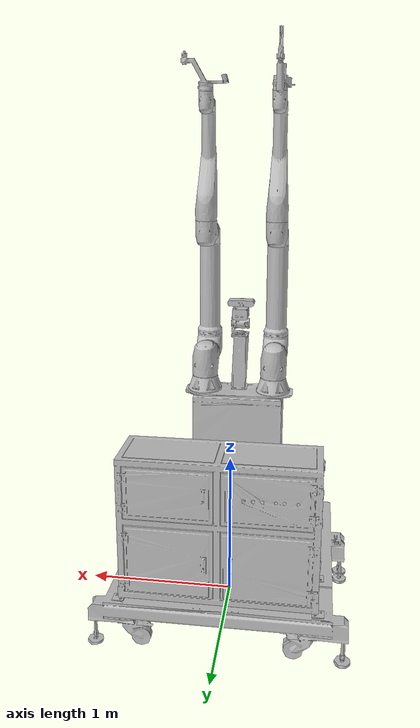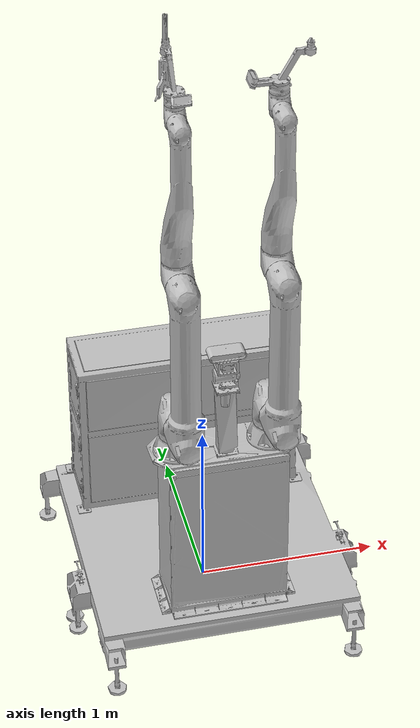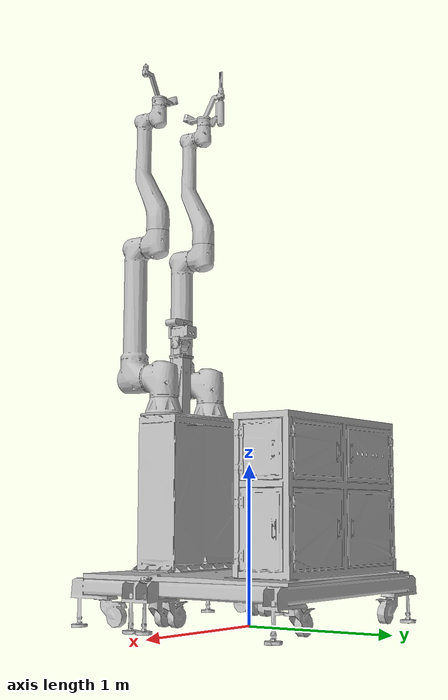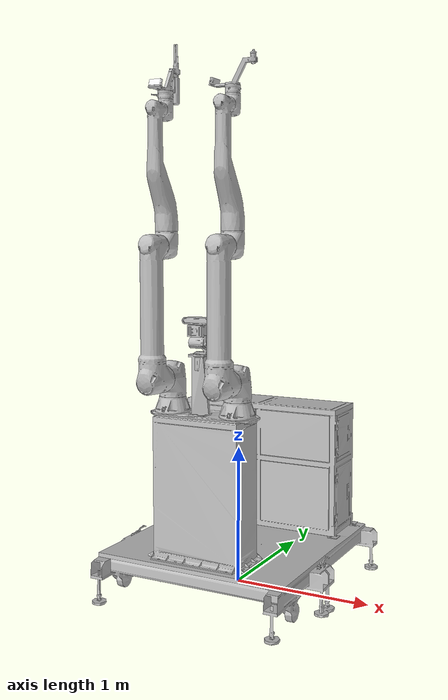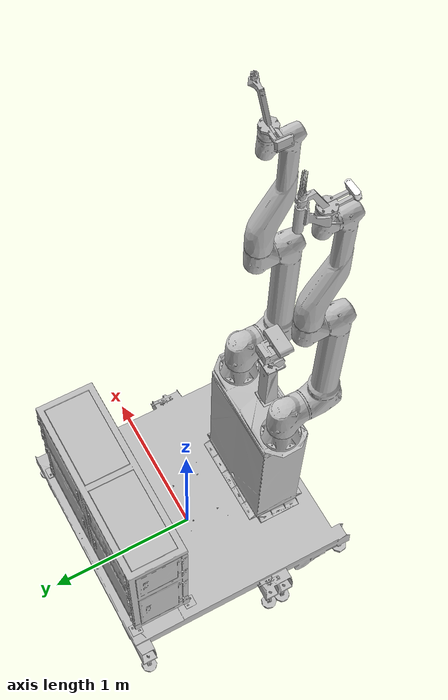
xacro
<?xml version="1.0"?>
<!-- LEGACY (robot_model:=kiro_legacy): original 0528 right-arm tool. The default model is
     construct_robot_0528_hongik_v4 (urdf.xacro / srdf). -->
<robot xmlns:xacro="http://www.ros.org/wiki/xacro" name="construct_robot_0528">
    <xacro:arg name="right_robot_ip" default="192.168.1.12" />
    <xacro:arg name="left_robot_ip" default="192.168.1.11" />
    <xacro:arg name="cb_simulation" default="false" />
    <xacro:arg name="use_fake_left_hardware" default="false" />
    <xacro:arg name="use_fake_right_hardware" default="false" />
    <xacro:arg name="use_fake_head_hardware" default="false" />
    <xacro:arg name="fake_sensor_commands" default="false" />

    <!-- Import construct_robot_0528 urdf file -->
    <xacro:include filename="$(find construct_description)/urdf_0528/construct_robot_0528.urdf" />

    <!-- Import control_xacro -->
    <xacro:include filename="$(find construct_description)/urdf_0528/construct_robot_0528.ros2_control.xacro" />

    <xacro:construct_robot_0528_ros2_control
        left_robot_ip="$(arg left_robot_ip)"
        right_robot_ip="$(arg right_robot_ip)"
        cb_simulation="$(arg cb_simulation)"
        use_fake_left_hardware="$(arg use_fake_left_hardware)"
        use_fake_right_hardware="$(arg use_fake_right_hardware)"
        use_fake_head_hardware="$(arg use_fake_head_hardware)"
        fake_sensor_commands="$(arg fake_sensor_commands)" />

</robot>

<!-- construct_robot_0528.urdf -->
<robot
  name="construct_robot_0528">
  <link name="World" />
  <joint
    name="fixed_joint"
    type="fixed">
    <origin
      xyz="0 0 0"
      rpy="0 0 0" />
    <parent
      link="World" />
    <child
      link="base_link" />
    <axis
      xyz="0 0 0" />
  </joint>
  <link
    name="base_link">
    <inertial>
      <origin
        xyz="-1.50177279867325E-06 -0.0486243729911788 0.271749352170472"
        rpy="0 0 0" />
      <mass
        value="101.064169290272" />
      <inertia
        ixx="3.84471910976182"
        ixy="-1.96603504895316E-06"
        ixz="-4.96697058867377E-06"
        iyy="12.7657101867472"
        iyz="0.0183178842430371"
        izz="16.5037614321531" />
    </inertial>
    <visual>
      <origin
        xyz="0 0 0"
        rpy="0 0 0" />
      <geometry>
        <mesh
          filename="package://construct_description/meshes_0528/base_link_optimized.stl" />
      </geometry>
      <material
        name="">
        <color
          rgba="0.752941176470588 0.752941176470588 0.752941176470588 1" />
      </material>
    </visual>
    <collision>
      <origin
        xyz="0 0 0"
        rpy="0 0 0" />
      <geometry>
        <mesh
          filename="package://construct_description/meshes_0528/base_link_optimized.stl" />
      </geometry>
    </collision>
  </link>
  <link
    name="robot_base_link">
    <inertial>
      <origin
        xyz="-4.82972770976531E-06 -0.00264656671262931 0.630069164182882"
        rpy="0 0 0" />
      <mass
        value="9.62679966839745" />
      <inertia
        ixx="0.313388911240642"
        ixy="-5.92796209531898E-08"
        ixz="-2.49618789223468E-07"
        iyy="0.523961178342772"
        iyz="1.96032155522254E-05"
        izz="0.270037755370955" />
    </inertial>
    <visual>
      <origin
        xyz="0 0 0"
        rpy="0 0 0" />
      <geometry>
        <mesh
          filename="package://construct_description/meshes_0528/robot_base_link_optimized.stl" />
      </geometry>
      <material
        name="">
        <color
          rgba="0.752941176470588 0.752941176470588 0.752941176470588 1" />
      </material>
    </visual>
    <collision>
      <origin
        xyz="0 0 0"
        rpy="0 0 0" />
      <geometry>
        <mesh
          filename="package://construct_description/meshes_0528/robot_base_link_optimized.stl" />
      </geometry>
    </collision>
  </link>
  <joint
    name="robot_base_joint"
    type="fixed">
    <origin
      xyz="0 -0.5 0.33"
      rpy="0 0 0" />
    <parent
      link="base_link" />
    <child
      link="robot_base_link" />
    <axis
      xyz="0 0 0" />
  </joint>
  <link
    name="left_manipulator_base_link">
    <inertial>
      <origin
        xyz="2.47382312095618E-05 0.00352448223506857 0.0520878179463256"
        rpy="0 0 0" />
      <mass
        value="2.94161250691283" />
      <inertia
        ixx="0.0106200517003664"
        ixy="-1.89261730148865E-05"
        ixz="3.06865809529576E-06"
        iyy="0.00992340232610754"
        iyz="0.000162263314541543"
        izz="0.0150373114291645" />
    </inertial>
    <visual>
      <origin
        xyz="0 0 0"
        rpy="0 0 0" />
      <geometry>
        <mesh
          filename="package://construct_description/meshes_0528/left_manipulator_base_link_optimized.stl" />
      </geometry>
      <material
        name="">
        <color
          rgba="0.752941176470588 0.752941176470588 0.752941176470588 1" />
      </material>
    </visual>
    <collision>
      <origin
        xyz="0 0 0"
        rpy="0 0 0" />
      <geometry>
        <mesh
          filename="package://construct_description/meshes_0528/left_manipulator_base_link_optimized.stl" />
      </geometry>
    </collision>
  </link>
  <joint
    name="left_manipulator_base_joint"
    type="fixed">
    <origin
      xyz="0.25 0 1.0002"
      rpy="0 0 3.141592653589793" />
    <parent
      link="robot_base_link" />
    <child
      link="left_manipulator_base_link" />
    <axis
      xyz="0 0 0" />
  </joint>
  <link
    name="left_manipulator_link1">
    <inertial>
      <origin
        xyz="-7.82409892144398E-06 -0.0181689701636886 0.14860081086915"
        rpy="0 0 0" />
      <mass
        value="2.57873101336861" />
      <inertia
        ixx="0.0083586740750569"
        ixy="2.29931705651022E-06"
        ixz="2.12674445262705E-06"
        iyy="0.00850904084065618"
        iyz="-0.00228223234669651"
        izz="0.00869869730406677" />
    </inertial>
    <visual>
      <origin
        xyz="0 0 0"
        rpy="0 0 0" />
      <geometry>
        <mesh
          filename="package://construct_description/meshes_0528/left_manipulator_link1_optimized.stl" />
      </geometry>
      <material
        name="">
        <color
          rgba="0.752941176470588 0.752941176470588 0.752941176470588 1" />
      </material>
    </visual>
    <collision>
      <origin
        xyz="0 0 0"
        rpy="0 0 0" />
      <geometry>
        <mesh
          filename="package://construct_description/meshes_0528/left_manipulator_link1_optimized.stl" />
      </geometry>
    </collision>
  </link>
  <joint
    name="left_manipulator_joint1"
    type="revolute">
    <origin
      xyz="0 0 0.1073"
      rpy="0 0 0" />
    <parent
      link="left_manipulator_base_link" />
    <child
      link="left_manipulator_link1" />
    <axis
      xyz="0 0 1" />
    <limit
      lower="-6.283"
      upper="6.283"
      effort="400"
      velocity="2.094" />
  </joint>
  <link
    name="left_manipulator_link2">
    <inertial>
      <origin
        xyz="-1.28265053202237E-06 0.464813426587113 0.133590251404909"
        rpy="0 0 0" />
      <mass
        value="18.6675270362353" />
      <inertia
        ixx="0.486061951013357"
        ixy="2.31528993157915E-06"
        ixz="2.13850475297004E-06"
        iyy="0.0563638160914465"
        iyz="1.47266624393945E-05"
        izz="0.48676195036387" />
    </inertial>
    <visual>
      <origin
        xyz="0 0 0"
        rpy="0 0 0" />
      <geometry>
        <mesh
          filename="package://construct_description/meshes_0528/left_manipulator_link2_optimized.stl" />
      </geometry>
      <material
        name="">
        <color
          rgba="0.752941176470588 0.752941176470588 0.752941176470588 1" />
      </material>
    </visual>
    <collision>
      <origin
        xyz="0 0 0"
        rpy="0 0 0" />
      <geometry>
        <mesh
          filename="package://construct_description/meshes_0528/left_manipulator_link2_optimized.stl" />
      </geometry>
    </collision>
  </link>
  <joint
    name="left_manipulator_joint2"
    type="revolute">
    <origin
      xyz="0 0.12 0.134"
      rpy="1.5708 0 -3.1416" />
    <parent
      link="left_manipulator_link1" />
    <child
      link="left_manipulator_link2" />
    <axis
      xyz="0 0 -1" />
    <limit
      lower="-6.283"
      upper="6.283"
      effort="400"
      velocity="2.094" />
  </joint>
  <link
    name="left_manipulator_link3">
    <inertial>
      <origin
        xyz="1.07328086652869E-06 0.0128746593563673 -0.0787137941128505"
        rpy="0 0 0" />
      <mass
        value="3.51858424407504" />
      <inertia
        ixx="0.00986845981905237"
        ixy="1.19292529619721E-08"
        ixz="1.61720587631227E-08"
        iyy="0.0102207475608464"
        iyz="0.0022969582216192"
        izz="0.0101224880827007" />
    </inertial>
    <visual>
      <origin
        xyz="0 0 0"
        rpy="0 0 0" />
      <geometry>
        <mesh
          filename="package://construct_description/meshes_0528/left_manipulator_link3_optimized.stl" />
      </geometry>
      <material
        name="">
        <color
          rgba="0.752941176470588 0.752941176470588 0.752941176470588 1" />
      </material>
    </visual>
    <collision>
      <origin
        xyz="0 0 0"
        rpy="0 0 0" />
      <geometry>
        <mesh
          filename="package://construct_description/meshes_0528/left_manipulator_link3_optimized.stl" />
      </geometry>
    </collision>
  </link>
  <joint
    name="left_manipulator_joint3"
    type="revolute">
    <origin
      xyz="0 0.885 0.0365"
      rpy="0 0 0" />
    <parent
      link="left_manipulator_link2" />
    <child
      link="left_manipulator_link3" />
    <axis
      xyz="0 0 -1" />
    <limit
      lower="-6.283"
      upper="6.283"
      effort="300"
      velocity="2.094" />
  </joint>
  <link
    name="left_manipulator_link4">
    <inertial>
      <origin
        xyz="-4.72698405104555E-06 0.0698846891131144 0.347470625119866"
        rpy="0 0 0" />
      <mass
        value="10.1068776913449" />
      <inertia
        ixx="0.385424405879349"
        ixy="1.99014578608369E-07"
        ixz="1.10245972702519E-06"
        iyy="0.358902617182911"
        iyz="-0.0890475687244486"
        izz="0.0471921249012298" />
    </inertial>
    <visual>
      <origin
        xyz="0 0 0"
        rpy="0 0 0" />
      <geometry>
        <mesh
          filename="package://construct_description/meshes_0528/left_manipulator_link4_optimized.stl" />
      </geometry>
      <material
        name="">
        <color
          rgba="0.752941176470588 0.752941176470588 0.752941176470588 1" />
      </material>
    </visual>
    <collision>
      <origin
        xyz="0 0 0"
        rpy="0 0 0" />
      <geometry>
        <mesh
          filename="package://construct_description/meshes_0528/left_manipulator_link4_optimized.stl" />
      </geometry>
    </collision>
  </link>
  <joint
    name="left_manipulator_joint4"
    type="revolute">
    <origin
      xyz="0 0.0975 -0.09"
      rpy="1.5708 0 -3.1416" />
    <parent
      link="left_manipulator_link3" />
    <child
      link="left_manipulator_link4" />
    <axis
      xyz="0 0 1" />
    <limit
      lower="-6.283"
      upper="6.283"
      effort="120"
      velocity="3.141" />
  </joint>
  <link
    name="left_manipulator_link5">
    <inertial>
      <origin
        xyz="3.33949444618342E-06 0.00696629145827199 0.0549279144808109"
        rpy="0 0 0" />
      <mass
        value="1.13314280303703" />
      <inertia
        ixx="0.0013270763712727"
        ixy="3.10737396485923E-08"
        ixz="3.78232703207708E-10"
        iyy="0.00138729124200453"
        iyz="-0.000318692891988123"
        izz="0.00134039089412424" />
    </inertial>
    <visual>
      <origin
        xyz="0 0 0"
        rpy="0 0 0" />
      <geometry>
        <mesh
          filename="package://construct_description/meshes_0528/left_manipulator_link5_optimized.stl" />
      </geometry>
      <material
        name="">
        <color
          rgba="0.752941176470588 0.752941176470588 0.752941176470588 1" />
      </material>
    </visual>
    <collision>
      <origin
        xyz="0 0 0"
        rpy="0 0 0" />
      <geometry>
        <mesh
          filename="package://construct_description/meshes_0528/left_manipulator_link5_optimized.stl" />
      </geometry>
    </collision>
  </link>
  <joint
    name="left_manipulator_joint5"
    type="revolute">
    <origin
      xyz="0 0.0597 0.7875"
      rpy="1.5708 0 0" />
    <parent
      link="left_manipulator_link4" />
    <child
      link="left_manipulator_link5" />
    <axis
      xyz="0 0 1" />
    <limit
      lower="-6.283"
      upper="6.283"
      effort="120"
      velocity="3.141" />
  </joint>
  <link
    name="left_manipulator_link6">
    <inertial>
      <origin
        xyz="-0.000335497970648024 2.37285793401321E-05 0.0301949633975802"
        rpy="0 0 0" />
      <mass
        value="0.424231397911477" />
      <inertia
        ixx="0.000302897453638027"
        ixy="1.3349841815912E-08"
        ixz="2.23237462650332E-08"
        iyy="0.000299224095311333"
        iyz="-1.66932638524379E-07"
        izz="0.000490642092942804" />
    </inertial>
    <visual>
      <origin
        xyz="0 0 0"
        rpy="0 0 0" />
      <geometry>
        <mesh
          filename="package://construct_description/meshes_0528/left_manipulator_link6_optimized.stl" />
      </geometry>
      <material
        name="">
        <color
          rgba="0.752941176470588 0.752941176470588 0.752941176470588 1" />
      </material>
    </visual>
    <collision>
      <origin
        xyz="0 0 0"
        rpy="0 0 0" />
      <geometry>
        <mesh
          filename="package://construct_description/meshes_0528/left_manipulator_link6_optimized.stl" />
      </geometry>
    </collision>
  </link>
  <joint
    name="left_manipulator_joint6"
    type="revolute">
    <origin
      xyz="0 0.0695 0.0597"
      rpy="-1.5708 0 0" />
    <parent
      link="left_manipulator_link5" />
    <child
      link="left_manipulator_link6" />
    <axis
      xyz="0 0 1" />
    <limit
      lower="-6.283"
      upper="6.283"
      effort="120"
      velocity="3.141" />
  </joint>
  <link
    name="left_manipulator_link_ee">
    <inertial>
      <origin
        xyz="-0.0222271261992198 2.55565244592915E-05 -0.0650731273795286"
        rpy="0 0 0" />
      <mass
        value="0.382964083930774" />
      <inertia
        ixx="0.00031225673839569"
        ixy="3.60293986596278E-06"
        ixz="-8.50695130230842E-05"
        iyy="0.000968462342760267"
        iyz="2.39839809807178E-11"
        izz="0.000890179496030154" />
    </inertial>
    <visual>
      <origin
        xyz="0 0 0"
        rpy="0 0 0" />
      <geometry>
        <mesh
          filename="package://construct_description/meshes_0528/left_manipulator_link_ee_optimized.stl" />
      </geometry>
      <material
        name="">
        <color
          rgba="0.752941176470588 0.752941176470588 0.752941176470588 1" />
      </material>
    </visual>
    <collision>
      <origin
        xyz="0 0 0"
        rpy="0 0 0" />
      <geometry>
        <mesh
          filename="package://construct_description/meshes_0528/left_manipulator_link_ee_optimized.stl" />
      </geometry>
    </collision>
  </link>
  <joint
    name="left_manipulator_joint_ee"
    type="fixed">
    <origin
      xyz="0 0 0.0543"
      rpy="-3.1416 0 0" />
    <parent
      link="left_manipulator_link6" />
    <child
      link="left_manipulator_link_ee" />
    <axis
      xyz="0 0 0" />
  </joint>
  <link
    name="left_D435_link">
    <inertial>
      <origin
        xyz="-0.000562968804608821 3.29816876354361E-05 -0.0126645432739445"
        rpy="0 0 0" />
      <mass
        value="0.0817262722842057" />
      <inertia
        ixx="1.38764579712435E-05"
        ixy="-2.93259234112558E-09"
        ixz="-4.955302906488E-07"
        iyy="6.45709913173041E-05"
        iyz="9.95539277941689E-10"
        izz="6.50520814074491E-05" />
    </inertial>
    <visual>
      <origin
        xyz="0 0 0"
        rpy="0 0 0" />
      <geometry>
        <mesh
          filename="package://construct_description/meshes_0528/left_D435_link_optimized.stl" />
      </geometry>
      <material
        name="">
        <color
          rgba="0.752941176470588 0.752941176470588 0.752941176470588 1" />
      </material>
    </visual>
    <collision>
      <origin
        xyz="0 0 0"
        rpy="0 0 0" />
      <geometry>
        <mesh
          filename="package://construct_description/meshes_0528/left_D435_link_optimized.stl" />
      </geometry>
    </collision>
  </link>
  <joint
    name="left_D435_joint"
    type="fixed">
    <origin
      xyz="0.12546 0 -0.052085"
      rpy="2.8798 0 -1.5708" />
    <parent
      link="left_manipulator_link_ee" />
    <child
      link="left_D435_link" />
    <axis
      xyz="0 0 0" />
  </joint>
  <link name="left_manipulator_ee_point" />
  <joint
    name="left_ee_point_joint"
    type="fixed">
    <origin
      xyz="-0.14531 0.0 -0.2122"
      rpy="0 3.1416 0" />
    <parent
      link="left_manipulator_link_ee" />
    <child
      link="left_manipulator_ee_point" />
    <axis
      xyz="0 0 0" />
  </joint>
  <link
    name="right_manipulator_base_link">
    <inertial>
      <origin
        xyz="2.47382304695565E-05 0.00352448222734059 0.0520878179475872"
        rpy="0 0 0" />
      <mass
        value="2.94161250669878" />
      <inertia
        ixx="0.0106200517003406"
        ixy="-1.89261730177182E-05"
        ixz="3.06865809997853E-06"
        iyy="0.00992340232605907"
        iyz="0.000162263314539519"
        izz="0.0150373114291498" />
    </inertial>
    <visual>
      <origin
        xyz="0 0 0"
        rpy="0 0 0" />
      <geometry>
        <mesh
          filename="package://construct_description/meshes_0528/right_manipulator_base_link_optimized.stl" />
      </geometry>
      <material
        name="">
        <color
          rgba="0.752941176470588 0.752941176470588 0.752941176470588 1" />
      </material>
    </visual>
    <collision>
      <origin
        xyz="0 0 0"
        rpy="0 0 0" />
      <geometry>
        <mesh
          filename="package://construct_description/meshes_0528/right_manipulator_base_link_optimized.stl" />
      </geometry>
    </collision>
  </link>
  <joint
    name="right_manipulator_base_joint"
    type="fixed">
    <origin
      xyz="-0.25 0 1.00019999999931"
      rpy="0 0 3.141592653589793" />
    <parent
      link="robot_base_link" />
    <child
      link="right_manipulator_base_link" />
    <axis
      xyz="0 0 0" />
  </joint>
  <link
    name="right_manipulator_link1">
    <inertial>
      <origin
        xyz="-7.82410358257657E-06 -0.0181689701674135 0.148600810866439"
        rpy="0 0 0" />
      <mass
        value="2.57873101367082" />
      <inertia
        ixx="0.00835867407580836"
        ixy="2.29931665414118E-06"
        ixz="2.12674399096342E-06"
        iyy="0.008509040841585"
        iyz="-0.00228223234711189"
        izz="0.00869869730483736" />
    </inertial>
    <visual>
      <origin
        xyz="0 0 0"
        rpy="0 0 0" />
      <geometry>
        <mesh
          filename="package://construct_description/meshes_0528/right_manipulator_link1_optimized.stl" />
      </geometry>
      <material
        name="">
        <color
          rgba="0.752941176470588 0.752941176470588 0.752941176470588 1" />
      </material>
    </visual>
    <collision>
      <origin
        xyz="0 0 0"
        rpy="0 0 0" />
      <geometry>
        <mesh
          filename="package://construct_description/meshes_0528/right_manipulator_link1_optimized.stl" />
      </geometry>
    </collision>
  </link>
  <joint
    name="right_manipulator_joint1"
    type="revolute">
    <origin
      xyz="0 0 0.1073"
      rpy="0 0 0" />
    <parent
      link="right_manipulator_base_link" />
    <child
      link="right_manipulator_link1" />
    <axis
      xyz="0 0 1" />
    <limit
      lower="-6.283"
      upper="6.283"
      effort="400"
      velocity="2.094" />
  </joint>
  <link
    name="right_manipulator_link2">
    <inertial>
      <origin
        xyz="-1.28265535670469E-06 0.464813426482565 0.133590251397412"
        rpy="0 0 0" />
      <mass
        value="18.6675270345251" />
      <inertia
        ixx="0.486061951018069"
        ixy="2.31528060607426E-06"
        ixz="2.13849798201568E-06"
        iyy="0.0563638160963733"
        iyz="1.47266635714399E-05"
        izz="0.486761950369755" />
    </inertial>
    <visual>
      <origin
        xyz="0 0 0"
        rpy="0 0 0" />
      <geometry>
        <mesh
          filename="package://construct_description/meshes_0528/right_manipulator_link2_optimized.stl" />
      </geometry>
      <material
        name="">
        <color
          rgba="0.752941176470588 0.752941176470588 0.752941176470588 1" />
      </material>
    </visual>
    <collision>
      <origin
        xyz="0 0 0"
        rpy="0 0 0" />
      <geometry>
        <mesh
          filename="package://construct_description/meshes_0528/right_manipulator_link2_optimized.stl" />
      </geometry>
    </collision>
  </link>
  <joint
    name="right_manipulator_joint2"
    type="revolute">
    <origin
      xyz="0 0.12 0.134"
      rpy="1.5708 0 -3.1416" />
    <parent
      link="right_manipulator_link1" />
    <child
      link="right_manipulator_link2" />
    <axis
      xyz="0 0 -1" />
    <limit
      lower="-6.283"
      upper="6.283"
      effort="400"
      velocity="2.094" />
  </joint>
  <link
    name="right_manipulator_link3">
    <inertial>
      <origin
        xyz="1.07336974475292E-06 0.0128746592487388 -0.0787137943297136"
        rpy="0 0 0" />
      <mass
        value="3.51858424049439" />
      <inertia
        ixx="0.00986845983392826"
        ixy="1.19155758443985E-08"
        ixz="1.6109254044209E-08"
        iyy="0.0102207475740869"
        iyz="0.00229695824724019"
        izz="0.0101224880660249" />
    </inertial>
    <visual>
      <origin
        xyz="0 0 0"
        rpy="0 0 0" />
      <geometry>
        <mesh
          filename="package://construct_description/meshes_0528/right_manipulator_link3_optimized.stl" />
      </geometry>
      <material
        name="">
        <color
          rgba="0.752941176470588 0.752941176470588 0.752941176470588 1" />
      </material>
    </visual>
    <collision>
      <origin
        xyz="0 0 0"
        rpy="0 0 0" />
      <geometry>
        <mesh
          filename="package://construct_description/meshes_0528/right_manipulator_link3_optimized.stl" />
      </geometry>
    </collision>
  </link>
  <joint
    name="right_manipulator_joint3"
    type="revolute">
    <origin
      xyz="0 0.885 0.0365"
      rpy="0 0 0" />
    <parent
      link="right_manipulator_link2" />
    <child
      link="right_manipulator_link3" />
    <axis
      xyz="0 0 -1" />
    <limit
      lower="-6.283"
      upper="6.283"
      effort="300"
      velocity="2.094" />
  </joint>
  <link
    name="right_manipulator_link4">
    <inertial>
      <origin
        xyz="-4.74726867294439E-06 0.0698856284352851 0.347470930284585"
        rpy="0 0 0" />
      <mass
        value="10.1069948634129" />
      <inertia
        ixx="0.385425251786698"
        ixy="1.8092733254185E-07"
        ixz="1.0845260482231E-06"
        iyy="0.358903035401587"
        iyz="-0.0890480084339319"
        izz="0.0471925532618561" />
    </inertial>
    <visual>
      <origin
        xyz="0 0 0"
        rpy="0 0 0" />
      <geometry>
        <mesh
          filename="package://construct_description/meshes_0528/right_manipulator_link4_optimized.stl" />
      </geometry>
      <material
        name="">
        <color
          rgba="0.752941176470588 0.752941176470588 0.752941176470588 1" />
      </material>
    </visual>
    <collision>
      <origin
        xyz="0 0 0"
        rpy="0 0 0" />
      <geometry>
        <mesh
          filename="package://construct_description/meshes_0528/right_manipulator_link4_optimized.stl" />
      </geometry>
    </collision>
  </link>
  <joint
    name="right_manipulator_joint4"
    type="revolute">
    <origin
      xyz="0 0.0975 -0.09"
      rpy="1.5708 0 3.1416" />
    <parent
      link="right_manipulator_link3" />
    <child
      link="right_manipulator_link4" />
    <axis
      xyz="0 0 1" />
    <limit
      lower="-6.283"
      upper="6.283"
      effort="120"
      velocity="3.141" />
  </joint>
  <link
    name="right_manipulator_link5">
    <inertial>
      <origin
        xyz="3.33949426423175E-06 0.00696629146758543 0.0549279144768857"
        rpy="0 0 0" />
      <mass
        value="1.13314280284386" />
      <inertia
        ixx="0.00132707637025073"
        ixy="3.10730263751509E-08"
        ixz="3.78995815686463E-10"
        iyy="0.00138729124229195"
        iyz="-0.000318692892096857"
        izz="0.00134039089547324" />
    </inertial>
    <visual>
      <origin
        xyz="0 0 0"
        rpy="0 0 0" />
      <geometry>
        <mesh
          filename="package://construct_description/meshes_0528/right_manipulator_link5_optimized.stl" />
      </geometry>
      <material
        name="">
        <color
          rgba="0.752941176470588 0.752941176470588 0.752941176470588 1" />
      </material>
    </visual>
    <collision>
      <origin
        xyz="0 0 0"
        rpy="0 0 0" />
      <geometry>
        <mesh
          filename="package://construct_description/meshes_0528/right_manipulator_link5_optimized.stl" />
      </geometry>
    </collision>
  </link>
  <joint
    name="right_manipulator_joint5"
    type="revolute">
    <origin
      xyz="0 0.0597 0.7875"
      rpy="1.5708 0 0" />
    <parent
      link="right_manipulator_link4" />
    <child
      link="right_manipulator_link5" />
    <axis
      xyz="0 0 1" />
    <limit
      lower="-6.283"
      upper="6.283"
      effort="120"
      velocity="3.141" />
  </joint>
  <link
    name="right_manipulator_link6">
    <inertial>
      <origin
        xyz="2.37285793569519E-05 0.000335497971714449 0.0301949633974274"
        rpy="0 0 0" />
      <mass
        value="0.424231397901505" />
      <inertia
        ixx="0.000299224095311277"
        ixy="-1.33498419454083E-08"
        ixz="-1.66932638891931E-07"
        iyy="0.000302897453637012"
        iyz="-2.23237462635028E-08"
        izz="0.00049064209294195" />
    </inertial>
    <visual>
      <origin
        xyz="0 0 0"
        rpy="0 0 0" />
      <geometry>
        <mesh
          filename="package://construct_description/meshes_0528/right_manipulator_link6_optimized.stl" />
      </geometry>
      <material
        name="">
        <color
          rgba="0.752941176470588 0.752941176470588 0.752941176470588 1" />
      </material>
    </visual>
    <collision>
      <origin
        xyz="0 0 0"
        rpy="0 0 0" />
      <geometry>
        <mesh
          filename="package://construct_description/meshes_0528/right_manipulator_link6_optimized.stl" />
      </geometry>
    </collision>
  </link>
  <joint
    name="right_manipulator_joint6"
    type="revolute">
    <origin
      xyz="0 0.0695 0.0597"
      rpy="-1.5708 -1.0472 0" />
    <parent
      link="right_manipulator_link5" />
    <child
      link="right_manipulator_link6" />
    <axis
      xyz="0 0 1" />
    <limit
      lower="-6.283"
      upper="6.283"
      effort="120"
      velocity="3.141" />
  </joint>
  <link
    name="right_manipulator_link_ee">
    <inertial>
      <origin
        xyz="0.0779465134589721 0.0342647649247861 -0.0515562382590877"
        rpy="0 0 0" />
      <mass
        value="0.927284628443802" />
      <inertia
        ixx="0.00208949077754504"
        ixy="-0.000552198870604648"
        ixz="0.000132815084604035"
        iyy="0.00220758179647275"
        iyz="0.000128581805453679"
        izz="0.00166524077454219" />
    </inertial>
    <visual>
      <origin
        xyz="0 0 0"
        rpy="0 0 0" />
      <geometry>
        <mesh
          filename="package://construct_description/meshes_0528/right_manipulator_link_ee_optimized.stl" />
      </geometry>
      <material
        name="">
        <color
          rgba="0.752941176470588 0.752941176470588 0.752941176470588 1" />
      </material>
    </visual>
    <collision>
      <origin
        xyz="0 0 0"
        rpy="0 0 0" />
      <geometry>
        <mesh
          filename="package://construct_description/meshes_0528/right_manipulator_link_ee_optimized.stl" />
      </geometry>
    </collision>
  </link>
  <joint
    name="right_manipulator_joint_ee"
    type="fixed">
    <origin
      xyz="0 0 0.0575"
      rpy="3.1416 0 0" />
    <parent
      link="right_manipulator_link6" />
    <child
      link="right_manipulator_link_ee" />
    <axis
      xyz="0 0 0" />
  </joint>
  <link
    name="right_D435_link">
    <inertial>
      <origin
        xyz="-0.19098582613116 0.914635226470393 -2.26231173473089"
        rpy="0 0 0" />
      <mass
        value="236.684811201339" />
      <inertia
        ixx="276.652104765068"
        ixy="-25.5417503492382"
        ixz="-22.7469206053575"
        iyy="318.960281487979"
        iyz="39.5272203132473"
        izz="156.242899020725" />
    </inertial>
    <visual>
      <origin
        xyz="0 0 0"
        rpy="0 0 0" />
      <geometry>
        <mesh
          filename="package://construct_description/meshes_0528/right_D435_link_optimized.stl" />
      </geometry>
      <material
        name="">
        <color
          rgba="1 1 1 1" />
      </material>
    </visual>
    <collision>
      <origin
        xyz="0 0 0"
        rpy="0 0 0" />
      <geometry>
        <mesh
          filename="package://construct_description/meshes_0528/right_D435_link_optimized.stl" />
      </geometry>
    </collision>
  </link>
  <joint
    name="right_D435_joint"
    type="fixed">
    <origin
      xyz="-0.11134 -0.057825 -0.052085"
      rpy="2.8798 0 2.0498" />
    <parent
      link="right_manipulator_link_ee" />
    <child
      link="right_D435_link" />
    <axis
      xyz="0 0 0" />
  </joint>
  <link name="right_manipulator_ee_point" />
  <joint
    name="right_ee_point_joint"
    type="fixed">
    <origin
      xyz="0.12895 0.06698 -0.33206 "
      rpy="0 3.1416 0" />
    <parent
      link="right_manipulator_link_ee" />
    <child
      link="right_manipulator_ee_point" />
    <axis
      xyz="0 0 0" />
  </joint>
  <link
    name="robot_head_base_link">
    <inertial>
      <origin
        xyz="-6.72003924034881E-06 -2.65996358386478E-05 0.0198600291933282"
        rpy="0 0 0" />
      <mass
        value="0.229518391569927" />
      <inertia
        ixx="0.000282665156032664"
        ixy="-2.43292398388385E-07"
        ixz="-3.03275959167182E-08"
        iyy="0.000282486900930974"
        iyz="-1.1738632519686E-08"
        izz="0.000387961270929751" />
    </inertial>
    <visual>
      <origin
        xyz="0 0 0"
        rpy="0 0 0" />
      <geometry>
        <mesh
          filename="package://construct_description/meshes_0528/robot_head_base_link_optimized.stl" />
      </geometry>
      <material
        name="">
        <color
          rgba="0.752941176470588 0.752941176470588 0.752941176470588 1" />
      </material>
    </visual>
    <collision>
      <origin
        xyz="0 0 0"
        rpy="0 0 0" />
      <geometry>
        <mesh
          filename="package://construct_description/meshes_0528/robot_head_base_link_optimized.stl" />
      </geometry>
    </collision>
  </link>
  <joint
    name="robot_head_base_joint"
    type="fixed">
    <origin
      xyz="0 -0.055 1.4055"
      rpy="-3.1416 0 0" />
    <parent
      link="robot_base_link" />
    <child
      link="robot_head_base_link" />
    <axis
      xyz="0 0 0" />
  </joint>
  <link
    name="robot_head_rev_link1">
    <inertial>
      <origin
        xyz="0.0143391595073612 -0.0055354989579369 0.0508427901428836"
        rpy="0 0 0" />
      <mass
        value="0.245342833112834" />
      <inertia
        ixx="0.000228752281554918"
        ixy="-5.76271794701628E-06"
        ixz="7.03790080400795E-06"
        iyy="0.000229507849545192"
        iyz="2.19107010308998E-06"
        izz="0.00022842564589815" />
    </inertial>
    <visual>
      <origin
        xyz="0 0 0"
        rpy="0 0 0" />
      <geometry>
        <mesh
          filename="package://construct_description/meshes_0528/robot_head_rev_link1_optimized.stl" />
      </geometry>
      <material
        name="">
        <color
          rgba="0.752941176470588 0.752941176470588 0.752941176470588 1" />
      </material>
    </visual>
    <collision>
      <origin
        xyz="0 0 0"
        rpy="0 0 0" />
      <geometry>
        <mesh
          filename="package://construct_description/meshes_0528/robot_head_rev_link1_optimized.stl" />
      </geometry>
    </collision>
  </link>
  <joint
    name="robot_head_rev_joint1"
    type="revolute">
    <origin
      xyz="0 0 -0.015"
      rpy="3.1416 0 0" />
    <parent
      link="robot_head_base_link" />
    <child
      link="robot_head_rev_link1" />
    <axis
      xyz="0 0 1" />
    <limit
      lower="-3.1416"
      upper="3.1416"
      effort="300"
      velocity="10" />
  </joint>
  <link
    name="robot_head_rev_link2">
    <inertial>
      <origin
        xyz="1.17217223976895E-05 0.0123398396556855 0.00544060276319358"
        rpy="0 0 0" />
      <mass
        value="0.0581188623839168" />
      <inertia
        ixx="2.38229031555522E-05"
        ixy="-2.06778815573959E-08"
        ixz="1.18398021737583E-09"
        iyy="1.68439895642845E-05"
        iyz="2.21959580043037E-07"
        izz="3.9253649892435E-05" />
    </inertial>
    <visual>
      <origin
        xyz="0 0 0"
        rpy="0 0 0" />
      <geometry>
        <mesh
          filename="package://construct_description/meshes_0528/robot_head_rev_link2_optimized.stl" />
      </geometry>
      <material
        name="">
        <color
          rgba="0.752941176470588 0.752941176470588 0.752941176470588 1" />
      </material>
    </visual>
    <collision>
      <origin
        xyz="0 0 0"
        rpy="0 0 0" />
      <geometry>
        <mesh
          filename="package://construct_description/meshes_0528/robot_head_rev_link2_optimized.stl" />
      </geometry>
    </collision>
  </link>
  <joint
    name="robot_head_rev_joint2"
    type="revolute">
    <origin
      xyz="0.051 -0.0075 0.067"
      rpy="1.5708 0 1.5708" />
    <parent
      link="robot_head_rev_link1" />
    <child
      link="robot_head_rev_link2" />
    <axis
      xyz="0 0 1" />
    <limit
      lower="-3.1416"
      upper="3.1416"
      effort="300"
      velocity="10" />
  </joint>
  <link
    name="helios_link">
    <inertial>
      <origin
        xyz="0.00039494527353201 0.00185577717424401 -0.0547254206253032"
        rpy="0 0 0" />
      <mass
        value="0.654565936249776" />
      <inertia
        ixx="0.000927188009536675"
        ixy="2.08595000282248E-09"
        ixz="2.84196141570598E-07"
        iyy="0.00111603807469944"
        iyz="1.02844320529336E-05"
        izz="0.00101560110142056" />
    </inertial>
    <visual>
      <origin
        xyz="0 0 0"
        rpy="0 0 0" />
      <geometry>
        <mesh
          filename="package://construct_description/meshes_0528/helios_link_optimized.stl" />
      </geometry>
      <material
        name="">
        <color
          rgba="0.752941176470588 0.752941176470588 0.752941176470588 1" />
      </material>
    </visual>
    <collision>
      <origin
        xyz="0 0 0"
        rpy="0 0 0" />
      <geometry>
        <mesh
          filename="package://construct_description/meshes_0528/helios_link_optimized.stl" />
      </geometry>
    </collision>
  </link>
  <joint
    name="helios_joint"
    type="fixed">
    <origin
      xyz="-0.0563 0.084 -0.055"
      rpy="3.1416 1.5708 0" />
    <parent
      link="robot_head_rev_link2" />
    <child
      link="helios_link" />
    <axis
      xyz="0 0 0" />
  </joint>
  <link
    name="zed_bracket_link">
    <inertial>
      <origin
        xyz="1.16018306073329E-14 1.72270700883603E-05 -0.00122888692706247"
        rpy="0 0 0" />
      <mass
        value="0.0136565534073743" />
      <inertia
        ixx="6.44438439541592E-07"
        ixy="1.3351925501957E-14"
        ixz="6.72035807011517E-20"
        iyy="2.02306294623712E-05"
        iyz="9.75987103570769E-11"
        izz="2.0510402115516E-05" />
    </inertial>
    <visual>
      <origin
        xyz="0 0 0"
        rpy="0 0 0" />
      <geometry>
        <mesh
          filename="package://construct_description/meshes_0528/zed_bracket_link_optimized.stl" />
      </geometry>
      <material
        name="">
        <color
          rgba="0.752941176470588 0.752941176470588 0.752941176470588 1" />
      </material>
    </visual>
    <collision>
      <origin
        xyz="0 0 0"
        rpy="0 0 0" />
      <geometry>
        <mesh
          filename="package://construct_description/meshes_0528/zed_bracket_link_optimized.stl" />
      </geometry>
    </collision>
  </link>
  <joint
    name="zed_bracket_joint"
    type="fixed">
    <origin
      xyz="0 -0.039 -0.0168"
      rpy="1.5708 0 -3.1416" />
    <parent
      link="helios_link" />
    <child
      link="zed_bracket_link" />
    <axis
      xyz="0 0 0" />
  </joint>
  <link
    name="zed2i_link">
    <inertial>
      <origin
        xyz="5.25818017657054E-05 0.00016829527480211 -0.0306786005943727"
        rpy="0 0 0" />
      <mass
        value="0.441895503677643" />
      <inertia
        ixx="0.000212337644975469"
        ixy="1.38578001039203E-09"
        ixz="-1.09479137301005E-09"
        iyy="0.00136585609554086"
        iyz="9.68597824268884E-08"
        izz="0.00132449044413947" />
    </inertial>
    <visual>
      <origin
        xyz="0 0 0"
        rpy="0 0 0" />
      <geometry>
        <mesh
          filename="package://construct_description/meshes_0528/zed2i_link_optimized.stl" />
      </geometry>
      <material
        name="">
        <color
          rgba="0.752941176470588 0.752941176470588 0.752941176470588 1" />
      </material>
    </visual>
    <collision>
      <origin
        xyz="0 0 0"
        rpy="0 0 0" />
      <geometry>
        <mesh
          filename="package://construct_description/meshes_0528/zed2i_link_optimized.stl" />
      </geometry>
    </collision>
  </link>
  <joint
    name="zed2i_joint"
    type="fixed">
    <origin
      xyz="0 0.014907 -0.027"
      rpy="1.5708 0 3.1416" />
    <parent
      link="zed_bracket_link" />
    <child
      link="zed2i_link" />
    <axis
      xyz="0 0 0" />
  </joint>
  <link
    name="controlbox_link">
    <inertial>
      <origin
        xyz="0.00181664445834956 -0.0122838021876752 -0.485600423034744"
        rpy="0 0 0" />
      <mass
        value="17.2171984396803" />
      <inertia
        ixx="0.255698808752668"
        ixy="-8.50987740757379E-06"
        ixz="0.000244663048446298"
        iyy="0.704323854081238"
        iyz="5.18158163931577E-06"
        izz="0.547428779029648" />
    </inertial>
    <visual>
      <origin
        xyz="0 0 0"
        rpy="0 0 0" />
      <geometry>
        <mesh
          filename="package://construct_description/meshes_0528/controlbox_link_optimized.stl" />
      </geometry>
      <material
        name="">
        <color
          rgba="0.752941176470588 0.752941176470588 0.752941176470588 1" />
      </material>
    </visual>
    <collision>
      <origin
        xyz="0 0 0"
        rpy="0 0 0" />
      <geometry>
        <mesh
          filename="package://construct_description/meshes_0528/controlbox_link_optimized.stl" />
      </geometry>
    </collision>
  </link>
  <joint
    name="controlbox_joint"
    type="fixed">
    <origin
      xyz="0 0.51 0.33"
      rpy="-3.1416 0 0" />
    <parent
      link="base_link" />
    <child
      link="controlbox_link" />
    <axis
      xyz="0 0 0" />
  </joint>
  <link
    name="testbed_link">
    <inertial>
      <origin
        xyz="-0.0826069016708251 -1.48562273594166E-10 0.822303228306994"
        rpy="0 0 0" />
      <mass
        value="26.9175425890455" />
      <inertia
        ixx="4.98295079146114"
        ixy="-1.53210210662596E-06"
        ixz="3.67887976242109E-12"
        iyy="5.11990748743831"
        iyz="2.39145132238029E-11"
        izz="0.335285037184983" />
    </inertial>
    <!-- Intentionally no visual: keep the testbed TF/reference geometry out
         of every RViz RobotModel display. -->
    <collision>
      <origin
        xyz="0 0 0"
        rpy="0 0 0" />
      <geometry>
        <mesh
          filename="package://construct_description/meshes_0528/testbed_link_optimized.stl" />
      </geometry>
    </collision>
  </link>
  <joint
    name="testbed_joint"
    type="fixed">
    <origin
      xyz="0.005744 -1.95 0"
      rpy="0 0 0" />
    <parent
      link="base_link" />
    <child
      link="testbed_link" />
    <axis
      xyz="0 0 0" />
  </joint>
  <link name="weld_point1_1" />
  <joint
    name="weld_point_joint1_1"
    type="fixed">
    <origin
      xyz="-0.25 -0.1 1.110"
      rpy="-3.1416 0 1.5708" />
    <parent
      link="testbed_link" />
    <child
      link="weld_point1_1" />
    <axis
      xyz="0 0 0" />
  </joint>
  <link name="weld_point1_2" />
  <joint
    name="weld_point_joint1_2"
    type="fixed">
    <origin
      xyz="-0.25 0.1 1.110"
      rpy="-3.1416 0 1.5708" />
    <parent
      link="testbed_link" />
    <child
      link="weld_point1_2" />
    <axis
      xyz="0 0 0" />
  </joint>
  <link name="weld_point1_2_2" />
  <joint
    name="weld_point_joint1_2_2"
    type="fixed">
    <origin
      xyz="-0.25 0.1 1.110"
      rpy="1.5708 1.5708 0" />
    <parent
      link="testbed_link" />
    <child
      link="weld_point1_2_2" />
    <axis
      xyz="0 0 0" />
  </joint>
  <link name="weld_point1_3" />
  <joint
    name="weld_point_joint1_3"
    type="fixed">
    <origin
      xyz="-0.25 0.1 1.097"
      rpy="1.5708 1.5708 0" />
    <parent
      link="testbed_link" />
    <child
      link="weld_point1_3" />
    <axis
      xyz="0 0 0" />
  </joint>
  <link name="weld_point1_4" />
  <joint
    name="weld_point_joint1_4"
    type="fixed">
    <origin
      xyz="-0.25 0.02 1.097"
      rpy="0 0 -1.5708" />
    <parent
      link="testbed_link" />
    <child
      link="weld_point1_4" />
    <axis
      xyz="0 0 0" />
  </joint>
  <link name="weld_point1_5" />
  <joint
    name="weld_point_joint1_5"
    type="fixed">
    <origin
      xyz="-0.25 0.004 1.081"
      rpy="1.5708 1.5708 0" />
    <parent
      link="testbed_link" />
    <child
      link="weld_point1_5" />
    <axis
      xyz="0 0 0" />
  </joint>
  <link name="weld_point1_6" />
  <joint
    name="weld_point_joint1_6"
    type="fixed">
    <origin
      xyz="-0.25 0.004 0.739"
      rpy="1.5708 1.5708 0" />
    <parent
      link="testbed_link" />
    <child
      link="weld_point1_6" />
    <axis
      xyz="0 0 0" />
  </joint>
  <link name="weld_point1_7" />
  <joint
    name="weld_point_joint1_7"
    type="fixed">
    <origin
      xyz="-0.25 0.02 0.723"
      rpy="-3.1416 0 1.5708" />
    <parent
      link="testbed_link" />
    <child
      link="weld_point1_7" />
    <axis
      xyz="0 0 0" />
  </joint>
  <link name="weld_point1_8_1" />
  <joint
    name="weld_point_joint1_8_1"
    type="fixed">
    <origin
      xyz="-0.25 0.1 0.723"
      rpy="-3.1416 0 1.5708" />
    <parent
      link="testbed_link" />
    <child
      link="weld_point1_8_1" />
    <axis
      xyz="0 0 0" />
  </joint>
  <link name="weld_point1_8_2" />
  <joint
    name="weld_point_joint1_8_2"
    type="fixed">
    <origin
      xyz="-0.25 0.1 0.723"
      rpy="1.5708 1.5708 0" />
    <parent
      link="testbed_link" />
    <child
      link="weld_point1_8_2" />
    <axis
      xyz="0 0 0" />
  </joint>
  <link name="weld_point1_9_1" />
  <joint
    name="weld_point_joint1_9_1"
    type="fixed">
    <origin
      xyz="-0.25 0.1 0.710"
      rpy="1.5708 1.5708 0" />
    <parent
      link="testbed_link" />
    <child
      link="weld_point1_9_1" />
    <axis
      xyz="0 0 0" />
  </joint>
  <link name="weld_point1_9_2" />
  <joint
    name="weld_point_joint1_9_2"
    type="fixed">
    <origin
      xyz="-0.25 0.1 0.710"
      rpy="0 0 -1.5708" />
    <parent
      link="testbed_link" />
    <child
      link="weld_point1_9_2" />
    <axis
      xyz="0 0 0" />
  </joint>
  <link name="weld_point1_10" />
  <joint
    name="weld_point_joint1_10"
    type="fixed">
    <origin
      xyz="-0.25 -0.1 0.710"
      rpy="0 0 -1.5708" />
    <parent
      link="testbed_link" />
    <child
      link="weld_point1_10" />
    <axis
      xyz="0 0 0" />
  </joint>
  <link name="weld_point2_1" />
  <joint
    name="weld_point_joint2_1"
    type="fixed">
    <origin
      xyz="0.25 -0.1 1.110"
      rpy="-3.1416 0 1.5708" />
    <parent
      link="testbed_link" />
    <child
      link="weld_point2_1" />
    <axis
      xyz="0 0 0" />
  </joint>
  <link name="weld_point2_2" />
  <joint
    name="weld_point_joint2_2"
    type="fixed">
    <origin
      xyz="0.25 0.1 1.110"
      rpy="-3.1416 0 1.5708" />
    <parent
      link="testbed_link" />
    <child
      link="weld_point2_2" />
    <axis
      xyz="0 0 0" />
  </joint>
  <link name="weld_point2_3" />
  <joint
    name="weld_point_joint2_3"
    type="fixed">
    <origin
      xyz="0.25 0.1 1.097"
      rpy="1.5708 1.5708 0" />
    <parent
      link="testbed_link" />
    <child
      link="weld_point2_3" />
    <axis
      xyz="0 0 0" />
  </joint>
  <link name="weld_point2_4" />
  <joint
    name="weld_point_joint2_4"
    type="fixed">
    <origin
      xyz="0.25 0.02 1.097"
      rpy="0 0 -1.5708" />
    <parent
      link="testbed_link" />
    <child
      link="weld_point2_4" />
    <axis
      xyz="0 0 0" />
  </joint>
  <link name="weld_point2_5" />
  <joint
    name="weld_point_joint2_5"
    type="fixed">
    <origin
      xyz="0.25 0.004 1.081"
      rpy="1.5708 1.5708 0" />
    <parent
      link="testbed_link" />
    <child
      link="weld_point2_5" />
    <axis
      xyz="0 0 0" />
  </joint>
  <link name="weld_point2_6" />
  <joint
    name="weld_point_joint2_6"
    type="fixed">
    <origin
      xyz="0.25 0.004 0.739"
      rpy="1.5708 1.5708 0" />
    <parent
      link="testbed_link" />
    <child
      link="weld_point2_6" />
    <axis
      xyz="0 0 0" />
  </joint>
  <link name="weld_point2_7" />
  <joint
    name="weld_point_joint2_7"
    type="fixed">
    <origin
      xyz="0.25 0.02 0.723"
      rpy="-3.1416 0 1.5708" />
    <parent
      link="testbed_link" />
    <child
      link="weld_point2_7" />
    <axis
      xyz="0 0 0" />
  </joint>
  <link name="weld_point2_8_1" />
  <joint
    name="weld_point_joint2_8_1"
    type="fixed">
    <origin
      xyz="0.25 0.1 0.723"
      rpy="-3.1416 0 1.5708" />
    <parent
      link="testbed_link" />
    <child
      link="weld_point2_8_1" />
    <axis
      xyz="0 0 0" />
  </joint>
  <link name="weld_point2_8_2" />
  <joint
    name="weld_point_joint2_8_2"
    type="fixed">
    <origin
      xyz="0.25 0.1 0.723"
      rpy="1.5708 1.5708 0" />
    <parent
      link="testbed_link" />
    <child
      link="weld_point2_8_2" />
    <axis
      xyz="0 0 0" />
  </joint>
  <link name="weld_point2_9_1" />
  <joint
    name="weld_point_joint2_9_1"
    type="fixed">
    <origin
      xyz="0.25 0.1 0.710"
      rpy="1.5708 1.5708 0" />
    <parent
      link="testbed_link" />
    <child
      link="weld_point2_9_1" />
    <axis
      xyz="0 0 0" />
  </joint>
  <link name="weld_point2_9_2" />
  <joint
    name="weld_point_joint2_9_2"
    type="fixed">
    <origin
      xyz="0.25 0.1 0.710"
      rpy="0 0 -1.5708" />
    <parent
      link="testbed_link" />
    <child
      link="weld_point2_9_2" />
    <axis
      xyz="0 0 0" />
  </joint>
  <link name="weld_point2_10" />
  <joint
    name="weld_point_joint2_10"
    type="fixed">
    <origin
      xyz="0.25 -0.1 0.710"
      rpy="0 0 -1.5708" />
    <parent
      link="testbed_link" />
    <child
      link="weld_point2_10" />
    <axis
      xyz="0 0 0" />
  </joint>
</robot>
